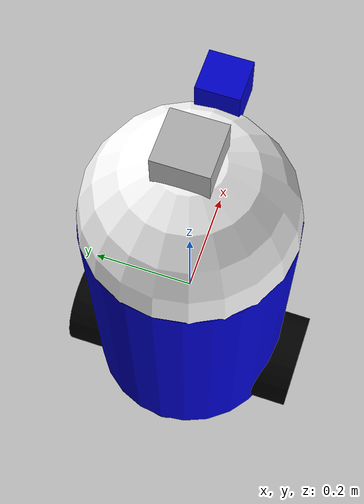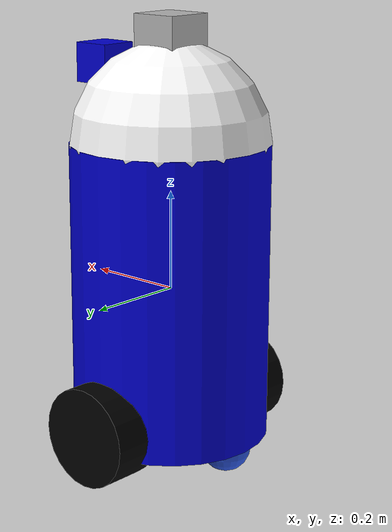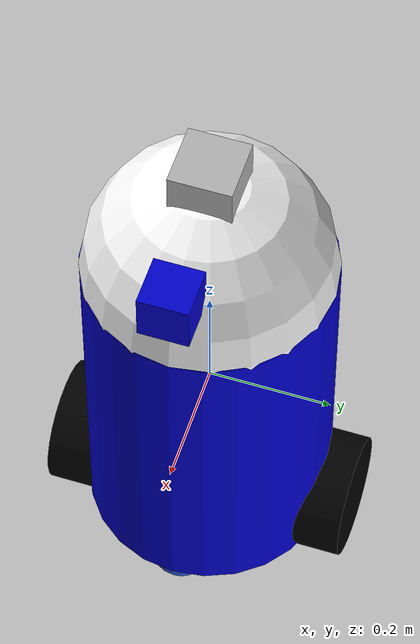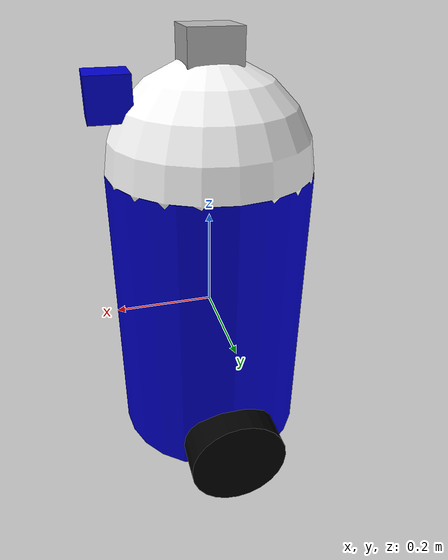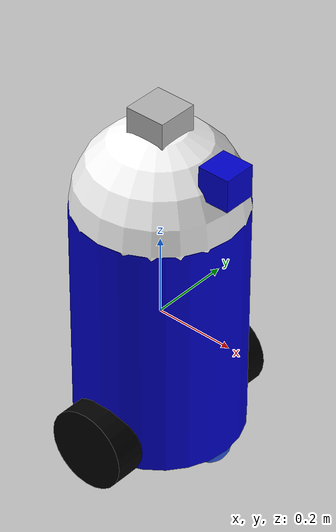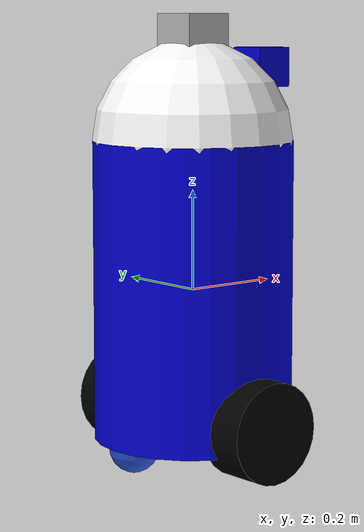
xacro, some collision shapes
<?xml version="1.0"?>
<robot name="my_robot" xmlns:xacro="http://www.ros.org/wiki/xacro">

  <xacro:include filename="$(find my_robot)/urdf/my_robot.gazebo" />

  <material name="blue">
    <color rgba="0 0 0.8 1"/>
  </material>
  <material name="black">
    <color rgba="0 0 0 1"/>
  </material>
  <material name="white">
    <color rgba="1 1 1 1"/>
  </material>

  <link name="robot_footprint"></link>

  <joint name="robot_footprint_joint" type="fixed">
    <origin xyz="0 0 0" rpy="0 0 0" />
    <parent link="robot_footprint"/>
    <child link="base_link" />
  </joint>

  <link name="base_link">
    <pose>0 0 0.05 0 0 0</pose>
    <inertial>
      <mass value="15.0"/>
      <origin xyz="0.0 0 0" rpy=" 0 0 0"/>
      <inertia
          ixx="0.1" ixy="0" ixz="0"
          iyy="0.1" iyz="0"
          izz="0.1"
      />
    </inertial>

    <visual name="body_visual">
      <origin xyz="0 0 0" rpy=" 0 0 0"/>
      <geometry>
        <cylinder length="0.6" radius="0.2"/>
      </geometry>
      <material name="blue"/>
    </visual>
    <collision name="body_collision">
      <origin xyz="0 0 0" rpy=" 0 0 0"/>
      <geometry>
        <cylinder length="0.6" radius="0.2"/>
      </geometry>
    </collision>

    <collision name='front_caster_collision'>
      <origin xyz="-0.15 0 -0.3" rpy=" 0 0 0"/>
      <geometry>
        <sphere radius="0.0499"/>
      </geometry>
    </collision>

    <visual name='front_caster_visual'>
      <origin xyz="-0.15 0 -0.3" rpy=" 0 0 0"/>
      <geometry>
        <sphere radius="0.05"/>
      </geometry>
    </visual>

    <collision name='back_caster_collision'>
      <origin xyz="0.15 0 -0.3" rpy=" 0 0 0"/>
      <geometry>
        <sphere radius="0.0499"/>
      </geometry>
    </collision>

    <visual name='back_caster_visual'>
      <origin xyz="0.15 0 -0.3" rpy=" 0 0 0"/>
      <geometry>
        <sphere radius="0.05"/>
      </geometry>
    </visual>
  </link>

   <link name="head">
    <visual>
      <geometry>
        <sphere radius="0.2"/>
      </geometry>
      <material name="white"/>
    </visual>
    <collision>
      <geometry>
        <sphere radius="0.2"/>
      </geometry>
    </collision>
  </link>
  <joint name="head_swivel" type="fixed">
    <parent link="base_link"/>
    <child link="head"/>
    <origin xyz="0 0 0.3"/>
  </joint>

  <link name="camera">
    <visual>
      <geometry>
        <box size="0.08 0.08 0.08"/>
      </geometry>
      <material name="blue"/>
    </visual>
    <collision>
      <geometry>
        <box size="0.08 0.08 0.08"/>
      </geometry>
    </collision>
  </link>

  <joint name="camera_joint" type="fixed">
    <parent link="head"/>
    <child link="camera"/>
    <origin xyz="0.1814 0 0.1414"/>
  </joint>

  <joint name="camera_optical_joint" type="fixed">
    <origin xyz="0 0 0" rpy="-1.5707 0 -1.5707"/>
    <parent link="camera"/>
    <child link="camera_link_optical"/>
  </joint>

  <link name="camera_link_optical">
  </link>

  <link name="right_wheel">
    <inertial>
      <mass value="5.0"/>
      <origin xyz="0.0 0 0" rpy=" 0 0 0"/>
      <inertia
          ixx="0.1" ixy="0" ixz="0"
          iyy="0.1" iyz="0"
          izz="0.1"
      />
    </inertial>
    <visual>
      <origin rpy="0 1.57075 1.57075" xyz="0 0 0"/>
      <geometry>
        <cylinder length="0.1" radius="0.1"/>
      </geometry>
      <material name="black"/>
    </visual>
    <collision>
      <origin rpy="0 1.57075 1.57075" xyz="0 0 0"/>
      <geometry>
        <cylinder length="0.1" radius="0.1"/>
      </geometry>
    </collision>
  </link>

  <joint name="right_wheel_joint" type="continuous">
    <parent link="base_link"/>
    <child link="right_wheel"/>
    <origin xyz="0 -0.2 -0.25"/>
    <axis xyz="0 1 0" rpy="0 0 0"/>
    <limit effort="10000" velocity="1000"/>
    <dynamics damping="1.0" friction="1.0"/>
  </joint>

  <link name="left_wheel">
    <inertial>
      <mass value="5.0"/>
      <origin xyz="0.0 0 0" rpy=" 0 0 0"/>
      <inertia
          ixx="0.1" ixy="0" ixz="0"
          iyy="0.1" iyz="0"
          izz="0.1"
      />
    </inertial>
    <visual>
      <origin rpy="0 1.57075 1.57075" xyz="0 0 0"/>
      <geometry>
        <cylinder length="0.1" radius="0.1"/>
      </geometry>
      <material name="black"/>
      <origin rpy="0 0 0" xyz="0 0 0"/>
    </visual>
    <collision>
      <origin rpy="0 1.57075 1.57075" xyz="0 0 0"/>
      <geometry>
        <cylinder length="0.1" radius="0.1"/>
      </geometry>
      <origin rpy="0 0 0" xyz="0 0 0"/>
    </collision>
  </link>

  <joint name="left_wheel_joint" type="continuous">
    <parent link="base_link"/>
    <child link="left_wheel"/>
    <origin xyz="0 0.2 -0.25"/>
    <axis xyz="0 1 0" rpy="0 0 0"/>
    <limit effort="10000" velocity="1000"/>
    <dynamics damping="1.0" friction="1.0"/>
  </joint>

  <link name='hokuyo'>
    <inertial>
      <mass value="1e-5"/>
      <origin xyz="0 0 0" rpy=" 0 0 0"/>
      <inertia
          ixx="1e-6" ixy="0" ixz="0"
          iyy="1e-6" iyz="0"
          izz="1e-6"
      />
    </inertial>

    <collision name='hokuyo_collision'>
      <origin xyz="0 0 0" rpy="0 0 0"/>
      <geometry>
        <box size="0.1 0.1 0.1"/>
      </geometry>
    </collision>

    <visual name='hokuyo_visual'>
      <origin xyz="0 0 0" rpy="0 0 0"/>
      <geometry>
        <mesh filename="package://my_robot/meshes/hokuyo.dae"/>
      </geometry>
    </visual>
  </link>

  <joint type="fixed" name="hokuyo_joint">
    <origin xyz="0.0 0 0.2" rpy="0 0 0"/>
    <child link="hokuyo"/>
    <parent link="head"/>
    <axis xyz="0 1 0" rpy="0 0 0"/>
  </joint>

</robot>
